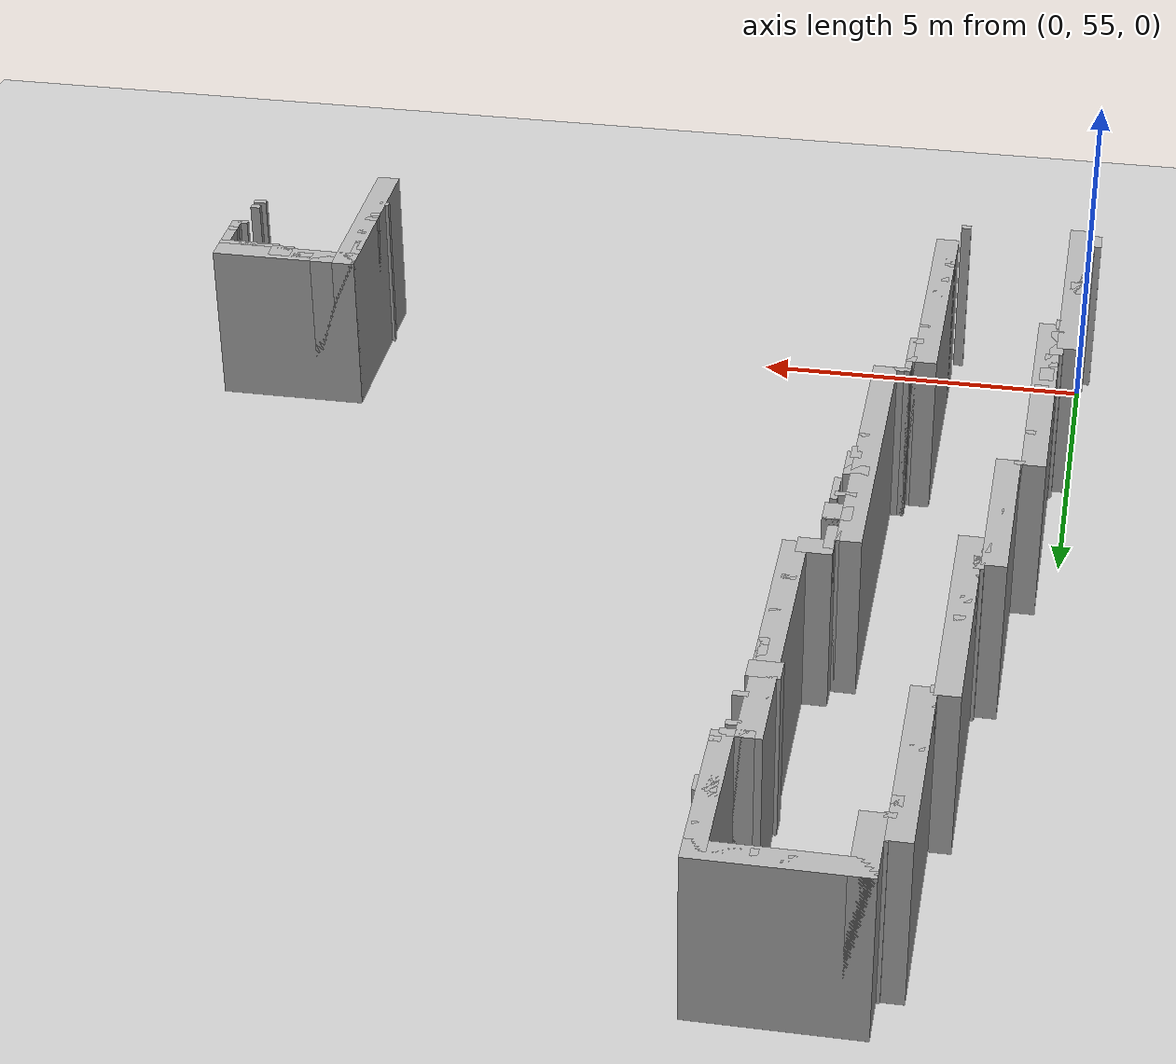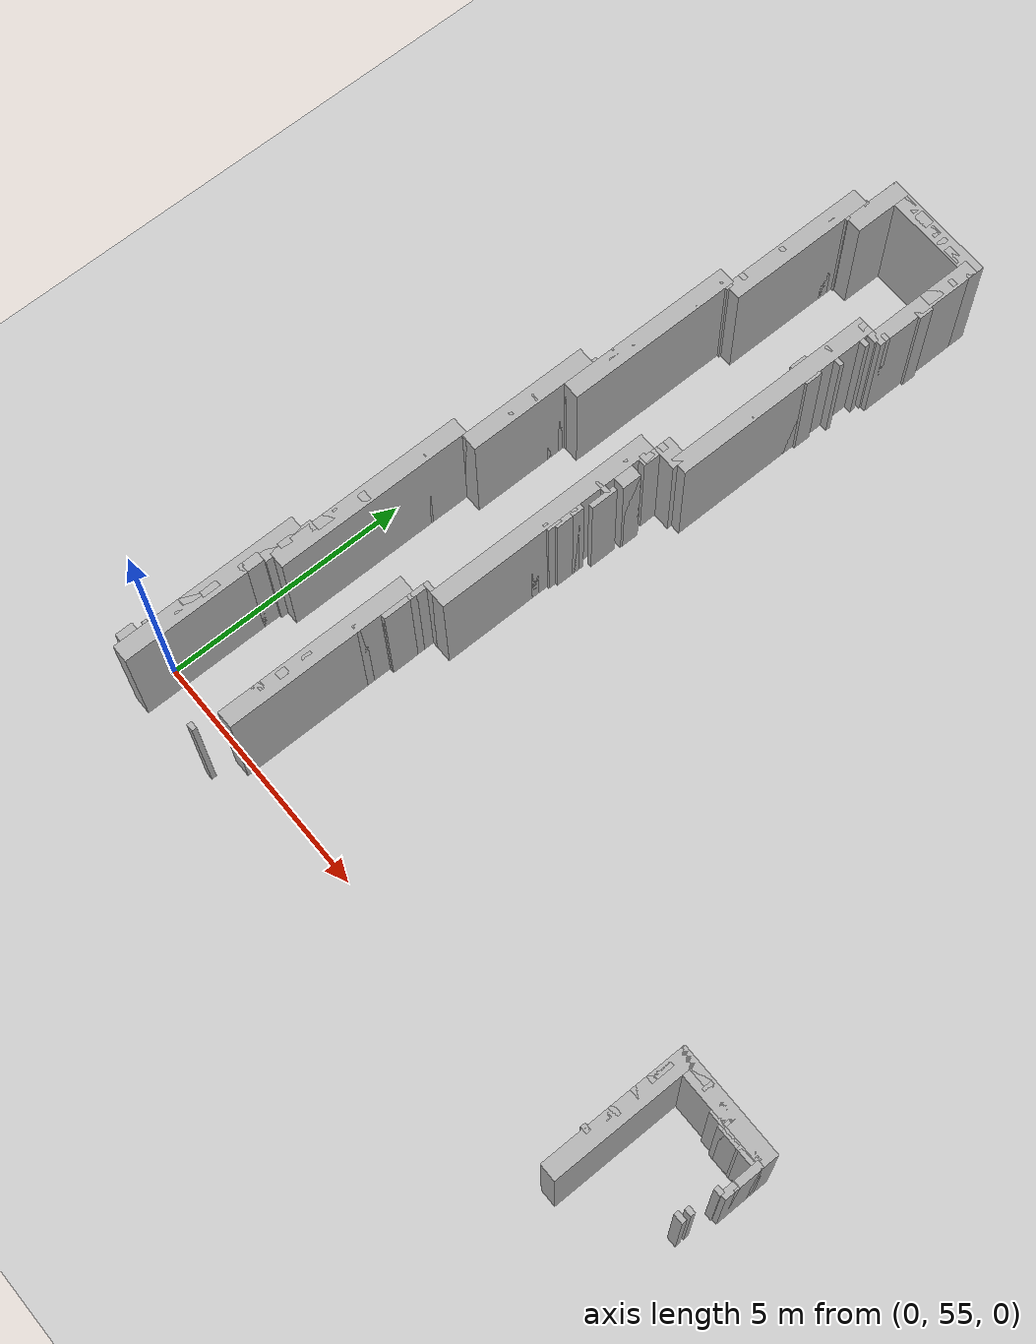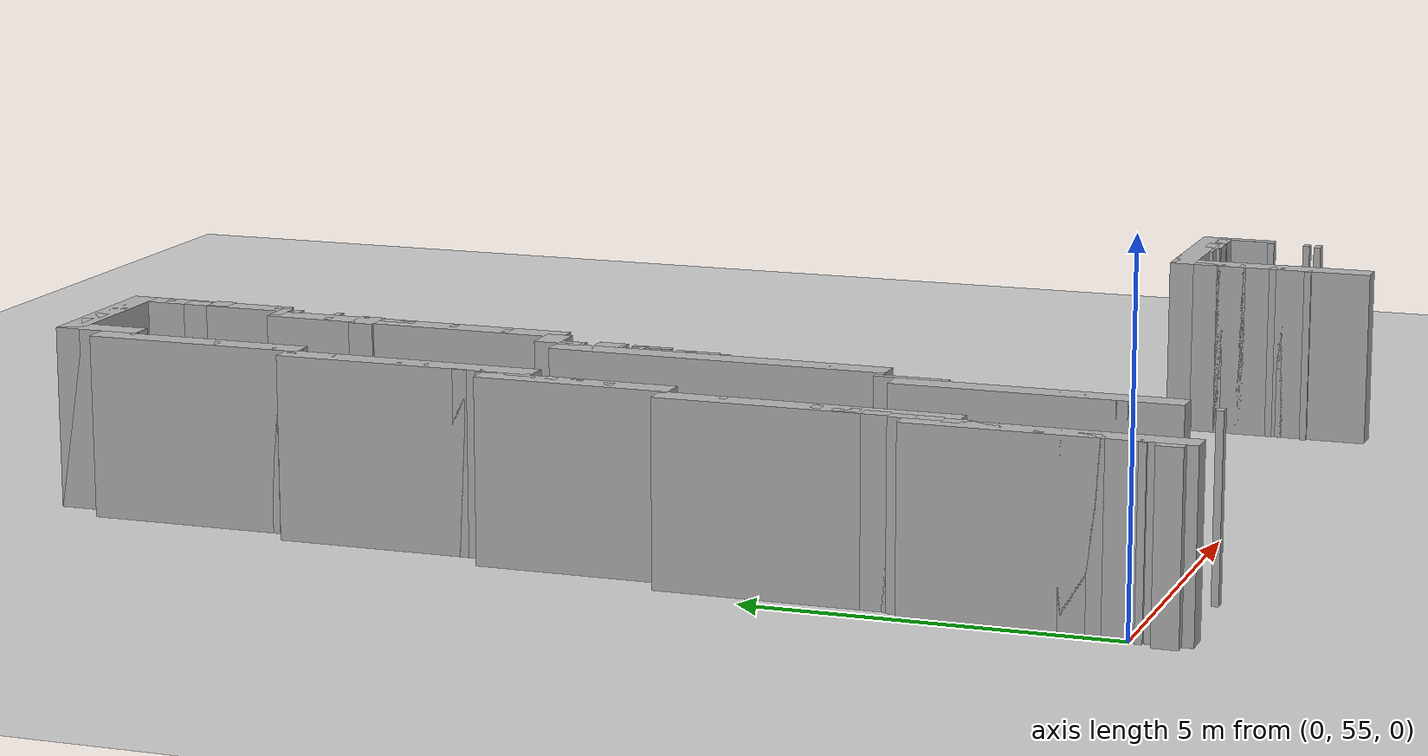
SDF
<sdf version="1.9">
 <world name="real_map_big_fix">
  <model name="ground_plane">
   <static>true</static>
   <link name="link">
    <collision name="collision">
     <geometry><plane><normal>0 0 1</normal><size>100 100</size></plane></geometry>
    </collision>
    <visual name="visual">
     <geometry><plane><normal>0 0 1</normal><size>100 100</size></plane></geometry>
     <material><ambient>0.8 0.8 0.8 1</ambient><diffuse>0.8 0.8 0.8 1</diffuse></material>
    </visual>
   </link>
  </model>
  <model name="wall_h_000">
   <static>true</static>
   <pose>2.7770 70.1620 1.2500 0 0 0</pose>
   <link name="link">
    <collision name="collision"><geometry><box><size>2.3000 0.3500 2.5000</size></box></geometry></collision>
    <visual name="visual">
     <geometry><box><size>2.3000 0.3500 2.5000</size></box></geometry>
     <material><ambient>0.7 0.7 0.7 1</ambient><diffuse>0.7 0.7 0.7 1</diffuse></material>
    </visual>
   </link>
  </model>
  <model name="wall_h_001">
   <static>true</static>
   <pose>3.8020 69.7120 1.2500 0 0 0</pose>
   <link name="link">
    <collision name="collision"><geometry><box><size>0.1500 0.1000 2.5000</size></box></geometry></collision>
    <visual name="visual">
     <geometry><box><size>0.1500 0.1000 2.5000</size></box></geometry>
     <material><ambient>0.7 0.7 0.7 1</ambient><diffuse>0.7 0.7 0.7 1</diffuse></material>
    </visual>
   </link>
  </model>
  <model name="wall_h_002">
   <static>true</static>
   <pose>1.6520 69.6120 1.2500 0 0 0</pose>
   <link name="link">
    <collision name="collision"><geometry><box><size>0.1500 0.1000 2.5000</size></box></geometry></collision>
    <visual name="visual">
     <geometry><box><size>0.1500 0.1000 2.5000</size></box></geometry>
     <material><ambient>0.7 0.7 0.7 1</ambient><diffuse>0.7 0.7 0.7 1</diffuse></material>
    </visual>
   </link>
  </model>
  <model name="wall_h_003">
   <static>true</static>
   <pose>3.7520 69.2620 1.2500 0 0 0</pose>
   <link name="link">
    <collision name="collision"><geometry><box><size>0.2500 0.3500 2.5000</size></box></geometry></collision>
    <visual name="visual">
     <geometry><box><size>0.2500 0.3500 2.5000</size></box></geometry>
     <material><ambient>0.7 0.7 0.7 1</ambient><diffuse>0.7 0.7 0.7 1</diffuse></material>
    </visual>
   </link>
  </model>
  <model name="wall_h_004">
   <static>true</static>
   <pose>1.6020 69.1620 1.2500 0 0 0</pose>
   <link name="link">
    <collision name="collision"><geometry><box><size>0.1500 0.1000 2.5000</size></box></geometry></collision>
    <visual name="visual">
     <geometry><box><size>0.1500 0.1000 2.5000</size></box></geometry>
     <material><ambient>0.7 0.7 0.7 1</ambient><diffuse>0.7 0.7 0.7 1</diffuse></material>
    </visual>
   </link>
  </model>
  <model name="wall_h_005">
   <static>true</static>
   <pose>3.8270 68.9370 1.2500 0 0 0</pose>
   <link name="link">
    <collision name="collision"><geometry><box><size>0.3000 0.3000 2.5000</size></box></geometry></collision>
    <visual name="visual">
     <geometry><box><size>0.3000 0.3000 2.5000</size></box></geometry>
     <material><ambient>0.7 0.7 0.7 1</ambient><diffuse>0.7 0.7 0.7 1</diffuse></material>
    </visual>
   </link>
  </model>
  <model name="wall_h_006">
   <static>true</static>
   <pose>1.5520 68.8870 1.2500 0 0 0</pose>
   <link name="link">
    <collision name="collision"><geometry><box><size>0.1500 0.2000 2.5000</size></box></geometry></collision>
    <visual name="visual">
     <geometry><box><size>0.1500 0.2000 2.5000</size></box></geometry>
     <material><ambient>0.7 0.7 0.7 1</ambient><diffuse>0.7 0.7 0.7 1</diffuse></material>
    </visual>
   </link>
  </model>
  <model name="wall_h_007">
   <static>true</static>
   <pose>3.8520 68.0620 1.2500 0 0 0</pose>
   <link name="link">
    <collision name="collision"><geometry><box><size>0.1500 0.1000 2.5000</size></box></geometry></collision>
    <visual name="visual">
     <geometry><box><size>0.1500 0.1000 2.5000</size></box></geometry>
     <material><ambient>0.7 0.7 0.7 1</ambient><diffuse>0.7 0.7 0.7 1</diffuse></material>
    </visual>
   </link>
  </model>
  <model name="wall_h_008">
   <static>true</static>
   <pose>3.6020 67.9120 1.2500 0 0 0</pose>
   <link name="link">
    <collision name="collision"><geometry><box><size>0.4500 0.1500 2.5000</size></box></geometry></collision>
    <visual name="visual">
     <geometry><box><size>0.4500 0.1500 2.5000</size></box></geometry>
     <material><ambient>0.7 0.7 0.7 1</ambient><diffuse>0.7 0.7 0.7 1</diffuse></material>
    </visual>
   </link>
  </model>
  <model name="wall_h_009">
   <static>true</static>
   <pose>1.4270 67.8370 1.2500 0 0 0</pose>
   <link name="link">
    <collision name="collision"><geometry><box><size>0.2000 0.1000 2.5000</size></box></geometry></collision>
    <visual name="visual">
     <geometry><box><size>0.2000 0.1000 2.5000</size></box></geometry>
     <material><ambient>0.7 0.7 0.7 1</ambient><diffuse>0.7 0.7 0.7 1</diffuse></material>
    </visual>
   </link>
  </model>
  <model name="wall_h_010">
   <static>true</static>
   <pose>3.6770 67.7120 1.2500 0 0 0</pose>
   <link name="link">
    <collision name="collision"><geometry><box><size>0.2000 0.1000 2.5000</size></box></geometry></collision>
    <visual name="visual">
     <geometry><box><size>0.2000 0.1000 2.5000</size></box></geometry>
     <material><ambient>0.7 0.7 0.7 1</ambient><diffuse>0.7 0.7 0.7 1</diffuse></material>
    </visual>
   </link>
  </model>
  <model name="wall_h_011">
   <static>true</static>
   <pose>3.4020 67.1120 1.2500 0 0 0</pose>
   <link name="link">
    <collision name="collision"><geometry><box><size>0.1500 0.1000 2.5000</size></box></geometry></collision>
    <visual name="visual">
     <geometry><box><size>0.1500 0.1000 2.5000</size></box></geometry>
     <material><ambient>0.7 0.7 0.7 1</ambient><diffuse>0.7 0.7 0.7 1</diffuse></material>
    </visual>
   </link>
  </model>
  <model name="wall_h_012">
   <static>true</static>
   <pose>3.6770 67.1120 1.2500 0 0 0</pose>
   <link name="link">
    <collision name="collision"><geometry><box><size>0.2000 0.1000 2.5000</size></box></geometry></collision>
    <visual name="visual">
     <geometry><box><size>0.2000 0.1000 2.5000</size></box></geometry>
     <material><ambient>0.7 0.7 0.7 1</ambient><diffuse>0.7 0.7 0.7 1</diffuse></material>
    </visual>
   </link>
  </model>
  <model name="wall_h_013">
   <static>true</static>
   <pose>1.3520 66.9370 1.2500 0 0 0</pose>
   <link name="link">
    <collision name="collision"><geometry><box><size>0.1500 0.1000 2.5000</size></box></geometry></collision>
    <visual name="visual">
     <geometry><box><size>0.1500 0.1000 2.5000</size></box></geometry>
     <material><ambient>0.7 0.7 0.7 1</ambient><diffuse>0.7 0.7 0.7 1</diffuse></material>
    </visual>
   </link>
  </model>
  <model name="wall_h_014">
   <static>true</static>
   <pose>3.4520 66.5620 1.2500 0 0 0</pose>
   <link name="link">
    <collision name="collision"><geometry><box><size>0.4500 0.3500 2.5000</size></box></geometry></collision>
    <visual name="visual">
     <geometry><box><size>0.4500 0.3500 2.5000</size></box></geometry>
     <material><ambient>0.7 0.7 0.7 1</ambient><diffuse>0.7 0.7 0.7 1</diffuse></material>
    </visual>
   </link>
  </model>
  <model name="wall_h_015">
   <static>true</static>
   <pose>1.2770 66.6120 1.2500 0 0 0</pose>
   <link name="link">
    <collision name="collision"><geometry><box><size>0.2000 0.1500 2.5000</size></box></geometry></collision>
    <visual name="visual">
     <geometry><box><size>0.2000 0.1500 2.5000</size></box></geometry>
     <material><ambient>0.7 0.7 0.7 1</ambient><diffuse>0.7 0.7 0.7 1</diffuse></material>
    </visual>
   </link>
  </model>
  <model name="wall_h_016">
   <static>true</static>
   <pose>3.5520 66.2120 1.2500 0 0 0</pose>
   <link name="link">
    <collision name="collision"><geometry><box><size>0.1500 0.3500 2.5000</size></box></geometry></collision>
    <visual name="visual">
     <geometry><box><size>0.1500 0.3500 2.5000</size></box></geometry>
     <material><ambient>0.7 0.7 0.7 1</ambient><diffuse>0.7 0.7 0.7 1</diffuse></material>
    </visual>
   </link>
  </model>
  <model name="wall_h_017">
   <static>true</static>
   <pose>3.5520 65.9620 1.2500 0 0 0</pose>
   <link name="link">
    <collision name="collision"><geometry><box><size>0.1500 0.1500 2.5000</size></box></geometry></collision>
    <visual name="visual">
     <geometry><box><size>0.1500 0.1500 2.5000</size></box></geometry>
     <material><ambient>0.7 0.7 0.7 1</ambient><diffuse>0.7 0.7 0.7 1</diffuse></material>
    </visual>
   </link>
  </model>
  <model name="wall_h_018">
   <static>true</static>
   <pose>1.2020 65.9620 1.2500 0 0 0</pose>
   <link name="link">
    <collision name="collision"><geometry><box><size>0.1500 0.1000 2.5000</size></box></geometry></collision>
    <visual name="visual">
     <geometry><box><size>0.1500 0.1000 2.5000</size></box></geometry>
     <material><ambient>0.7 0.7 0.7 1</ambient><diffuse>0.7 0.7 0.7 1</diffuse></material>
    </visual>
   </link>
  </model>
  <model name="wall_h_019">
   <static>true</static>
   <pose>1.2020 65.6370 1.2500 0 0 0</pose>
   <link name="link">
    <collision name="collision"><geometry><box><size>0.1500 0.1000 2.5000</size></box></geometry></collision>
    <visual name="visual">
     <geometry><box><size>0.1500 0.1000 2.5000</size></box></geometry>
     <material><ambient>0.7 0.7 0.7 1</ambient><diffuse>0.7 0.7 0.7 1</diffuse></material>
    </visual>
   </link>
  </model>
  <model name="wall_h_020">
   <static>true</static>
   <pose>3.5020 65.2870 1.2500 0 0 0</pose>
   <link name="link">
    <collision name="collision"><geometry><box><size>0.1500 0.1000 2.5000</size></box></geometry></collision>
    <visual name="visual">
     <geometry><box><size>0.1500 0.1000 2.5000</size></box></geometry>
     <material><ambient>0.7 0.7 0.7 1</ambient><diffuse>0.7 0.7 0.7 1</diffuse></material>
    </visual>
   </link>
  </model>
  <model name="wall_h_021">
   <static>true</static>
   <pose>1.1520 65.0620 1.2500 0 0 0</pose>
   <link name="link">
    <collision name="collision"><geometry><box><size>0.1500 0.1500 2.5000</size></box></geometry></collision>
    <visual name="visual">
     <geometry><box><size>0.1500 0.1500 2.5000</size></box></geometry>
     <material><ambient>0.7 0.7 0.7 1</ambient><diffuse>0.7 0.7 0.7 1</diffuse></material>
    </visual>
   </link>
  </model>
  <model name="wall_h_022">
   <static>true</static>
   <pose>1.1020 64.6120 1.2500 0 0 0</pose>
   <link name="link">
    <collision name="collision"><geometry><box><size>0.1500 0.1500 2.5000</size></box></geometry></collision>
    <visual name="visual">
     <geometry><box><size>0.1500 0.1500 2.5000</size></box></geometry>
     <material><ambient>0.7 0.7 0.7 1</ambient><diffuse>0.7 0.7 0.7 1</diffuse></material>
    </visual>
   </link>
  </model>
  <model name="wall_h_023">
   <static>true</static>
   <pose>3.4270 64.4870 1.2500 0 0 0</pose>
   <link name="link">
    <collision name="collision"><geometry><box><size>0.2000 0.1000 2.5000</size></box></geometry></collision>
    <visual name="visual">
     <geometry><box><size>0.2000 0.1000 2.5000</size></box></geometry>
     <material><ambient>0.7 0.7 0.7 1</ambient><diffuse>0.7 0.7 0.7 1</diffuse></material>
    </visual>
   </link>
  </model>
  <model name="wall_h_024">
   <static>true</static>
   <pose>1.0520 64.1370 1.2500 0 0 0</pose>
   <link name="link">
    <collision name="collision"><geometry><box><size>0.1500 0.2000 2.5000</size></box></geometry></collision>
    <visual name="visual">
     <geometry><box><size>0.1500 0.2000 2.5000</size></box></geometry>
     <material><ambient>0.7 0.7 0.7 1</ambient><diffuse>0.7 0.7 0.7 1</diffuse></material>
    </visual>
   </link>
  </model>
  <model name="wall_h_025">
   <static>true</static>
   <pose>1.0020 63.7370 1.2500 0 0 0</pose>
   <link name="link">
    <collision name="collision"><geometry><box><size>0.1500 0.3000 2.5000</size></box></geometry></collision>
    <visual name="visual">
     <geometry><box><size>0.1500 0.3000 2.5000</size></box></geometry>
     <material><ambient>0.7 0.7 0.7 1</ambient><diffuse>0.7 0.7 0.7 1</diffuse></material>
    </visual>
   </link>
  </model>
  <model name="wall_h_026">
   <static>true</static>
   <pose>3.1770 63.7120 1.2500 0 0 0</pose>
   <link name="link">
    <collision name="collision"><geometry><box><size>0.5000 0.3500 2.5000</size></box></geometry></collision>
    <visual name="visual">
     <geometry><box><size>0.5000 0.3500 2.5000</size></box></geometry>
     <material><ambient>0.7 0.7 0.7 1</ambient><diffuse>0.7 0.7 0.7 1</diffuse></material>
    </visual>
   </link>
  </model>
  <model name="wall_h_027">
   <static>true</static>
   <pose>2.9770 63.3870 1.2500 0 0 0</pose>
   <link name="link">
    <collision name="collision"><geometry><box><size>0.2000 0.3000 2.5000</size></box></geometry></collision>
    <visual name="visual">
     <geometry><box><size>0.2000 0.3000 2.5000</size></box></geometry>
     <material><ambient>0.7 0.7 0.7 1</ambient><diffuse>0.7 0.7 0.7 1</diffuse></material>
    </visual>
   </link>
  </model>
  <model name="wall_h_028">
   <static>true</static>
   <pose>0.9520 63.3120 1.2500 0 0 0</pose>
   <link name="link">
    <collision name="collision"><geometry><box><size>0.1500 0.3500 2.5000</size></box></geometry></collision>
    <visual name="visual">
     <geometry><box><size>0.1500 0.3500 2.5000</size></box></geometry>
     <material><ambient>0.7 0.7 0.7 1</ambient><diffuse>0.7 0.7 0.7 1</diffuse></material>
    </visual>
   </link>
  </model>
  <model name="wall_h_029">
   <static>true</static>
   <pose>0.9020 63.0370 1.2500 0 0 0</pose>
   <link name="link">
    <collision name="collision"><geometry><box><size>0.1500 0.1000 2.5000</size></box></geometry></collision>
    <visual name="visual">
     <geometry><box><size>0.1500 0.1000 2.5000</size></box></geometry>
     <material><ambient>0.7 0.7 0.7 1</ambient><diffuse>0.7 0.7 0.7 1</diffuse></material>
    </visual>
   </link>
  </model>
  <model name="wall_h_030">
   <static>true</static>
   <pose>2.9770 62.8620 1.2500 0 0 0</pose>
   <link name="link">
    <collision name="collision"><geometry><box><size>0.4000 0.3500 2.5000</size></box></geometry></collision>
    <visual name="visual">
     <geometry><box><size>0.4000 0.3500 2.5000</size></box></geometry>
     <material><ambient>0.7 0.7 0.7 1</ambient><diffuse>0.7 0.7 0.7 1</diffuse></material>
    </visual>
   </link>
  </model>
  <model name="wall_h_031">
   <static>true</static>
   <pose>0.9020 62.8120 1.2500 0 0 0</pose>
   <link name="link">
    <collision name="collision"><geometry><box><size>0.1500 0.1500 2.5000</size></box></geometry></collision>
    <visual name="visual">
     <geometry><box><size>0.1500 0.1500 2.5000</size></box></geometry>
     <material><ambient>0.7 0.7 0.7 1</ambient><diffuse>0.7 0.7 0.7 1</diffuse></material>
    </visual>
   </link>
  </model>
  <model name="wall_h_032">
   <static>true</static>
   <pose>0.8520 62.4870 1.2500 0 0 0</pose>
   <link name="link">
    <collision name="collision"><geometry><box><size>0.1500 0.2000 2.5000</size></box></geometry></collision>
    <visual name="visual">
     <geometry><box><size>0.1500 0.2000 2.5000</size></box></geometry>
     <material><ambient>0.7 0.7 0.7 1</ambient><diffuse>0.7 0.7 0.7 1</diffuse></material>
    </visual>
   </link>
  </model>
  <model name="wall_h_033">
   <static>true</static>
   <pose>2.9270 62.3870 1.2500 0 0 0</pose>
   <link name="link">
    <collision name="collision"><geometry><box><size>0.3000 0.1000 2.5000</size></box></geometry></collision>
    <visual name="visual">
     <geometry><box><size>0.3000 0.1000 2.5000</size></box></geometry>
     <material><ambient>0.7 0.7 0.7 1</ambient><diffuse>0.7 0.7 0.7 1</diffuse></material>
    </visual>
   </link>
  </model>
  <model name="wall_h_034">
   <static>true</static>
   <pose>0.8020 62.0120 1.2500 0 0 0</pose>
   <link name="link">
    <collision name="collision"><geometry><box><size>0.1500 0.1500 2.5000</size></box></geometry></collision>
    <visual name="visual">
     <geometry><box><size>0.1500 0.1500 2.5000</size></box></geometry>
     <material><ambient>0.7 0.7 0.7 1</ambient><diffuse>0.7 0.7 0.7 1</diffuse></material>
    </visual>
   </link>
  </model>
  <model name="wall_h_035">
   <static>true</static>
   <pose>2.8520 61.7620 1.2500 0 0 0</pose>
   <link name="link">
    <collision name="collision"><geometry><box><size>0.3500 0.2500 2.5000</size></box></geometry></collision>
    <visual name="visual">
     <geometry><box><size>0.3500 0.2500 2.5000</size></box></geometry>
     <material><ambient>0.7 0.7 0.7 1</ambient><diffuse>0.7 0.7 0.7 1</diffuse></material>
    </visual>
   </link>
  </model>
  <model name="wall_h_036">
   <static>true</static>
   <pose>2.9020 61.2870 1.2500 0 0 0</pose>
   <link name="link">
    <collision name="collision"><geometry><box><size>0.1500 0.3000 2.5000</size></box></geometry></collision>
    <visual name="visual">
     <geometry><box><size>0.1500 0.3000 2.5000</size></box></geometry>
     <material><ambient>0.7 0.7 0.7 1</ambient><diffuse>0.7 0.7 0.7 1</diffuse></material>
    </visual>
   </link>
  </model>
  <model name="wall_h_037">
   <static>true</static>
   <pose>0.6520 61.1870 1.2500 0 0 0</pose>
   <link name="link">
    <collision name="collision"><geometry><box><size>0.1500 0.1000 2.5000</size></box></geometry></collision>
    <visual name="visual">
     <geometry><box><size>0.1500 0.1000 2.5000</size></box></geometry>
     <material><ambient>0.7 0.7 0.7 1</ambient><diffuse>0.7 0.7 0.7 1</diffuse></material>
    </visual>
   </link>
  </model>
  <model name="wall_h_038">
   <static>true</static>
   <pose>2.8520 60.8620 1.2500 0 0 0</pose>
   <link name="link">
    <collision name="collision"><geometry><box><size>0.1500 0.1500 2.5000</size></box></geometry></collision>
    <visual name="visual">
     <geometry><box><size>0.1500 0.1500 2.5000</size></box></geometry>
     <material><ambient>0.7 0.7 0.7 1</ambient><diffuse>0.7 0.7 0.7 1</diffuse></material>
    </visual>
   </link>
  </model>
  <model name="wall_h_039">
   <static>true</static>
   <pose>0.5520 60.3620 1.2500 0 0 0</pose>
   <link name="link">
    <collision name="collision"><geometry><box><size>0.1500 0.1000 2.5000</size></box></geometry></collision>
    <visual name="visual">
     <geometry><box><size>0.1500 0.1000 2.5000</size></box></geometry>
     <material><ambient>0.7 0.7 0.7 1</ambient><diffuse>0.7 0.7 0.7 1</diffuse></material>
    </visual>
   </link>
  </model>
  <model name="wall_h_040">
   <static>true</static>
   <pose>2.7020 59.6620 1.2500 0 0 0</pose>
   <link name="link">
    <collision name="collision"><geometry><box><size>0.1500 0.1000 2.5000</size></box></geometry></collision>
    <visual name="visual">
     <geometry><box><size>0.1500 0.1000 2.5000</size></box></geometry>
     <material><ambient>0.7 0.7 0.7 1</ambient><diffuse>0.7 0.7 0.7 1</diffuse></material>
    </visual>
   </link>
  </model>
  <model name="wall_h_041">
   <static>true</static>
   <pose>0.4770 59.1120 1.2500 0 0 0</pose>
   <link name="link">
    <collision name="collision"><geometry><box><size>0.2000 0.1500 2.5000</size></box></geometry></collision>
    <visual name="visual">
     <geometry><box><size>0.2000 0.1500 2.5000</size></box></geometry>
     <material><ambient>0.7 0.7 0.7 1</ambient><diffuse>0.7 0.7 0.7 1</diffuse></material>
    </visual>
   </link>
  </model>
  <model name="wall_h_042">
   <static>true</static>
   <pose>2.5270 58.9370 1.2500 0 0 0</pose>
   <link name="link">
    <collision name="collision"><geometry><box><size>0.3000 0.1000 2.5000</size></box></geometry></collision>
    <visual name="visual">
     <geometry><box><size>0.3000 0.1000 2.5000</size></box></geometry>
     <material><ambient>0.7 0.7 0.7 1</ambient><diffuse>0.7 0.7 0.7 1</diffuse></material>
    </visual>
   </link>
  </model>
  <model name="wall_h_043">
   <static>true</static>
   <pose>0.4270 58.7120 1.2500 0 0 0</pose>
   <link name="link">
    <collision name="collision"><geometry><box><size>0.2000 0.3500 2.5000</size></box></geometry></collision>
    <visual name="visual">
     <geometry><box><size>0.2000 0.3500 2.5000</size></box></geometry>
     <material><ambient>0.7 0.7 0.7 1</ambient><diffuse>0.7 0.7 0.7 1</diffuse></material>
    </visual>
   </link>
  </model>
  <model name="wall_h_044">
   <static>true</static>
   <pose>2.4020 58.6120 1.2500 0 0 0</pose>
   <link name="link">
    <collision name="collision"><geometry><box><size>0.1500 0.1500 2.5000</size></box></geometry></collision>
    <visual name="visual">
     <geometry><box><size>0.1500 0.1500 2.5000</size></box></geometry>
     <material><ambient>0.7 0.7 0.7 1</ambient><diffuse>0.7 0.7 0.7 1</diffuse></material>
    </visual>
   </link>
  </model>
  <model name="wall_h_045">
   <static>true</static>
   <pose>0.3770 58.3120 1.2500 0 0 0</pose>
   <link name="link">
    <collision name="collision"><geometry><box><size>0.2000 0.3500 2.5000</size></box></geometry></collision>
    <visual name="visual">
     <geometry><box><size>0.2000 0.3500 2.5000</size></box></geometry>
     <material><ambient>0.7 0.7 0.7 1</ambient><diffuse>0.7 0.7 0.7 1</diffuse></material>
    </visual>
   </link>
  </model>
  <model name="wall_h_046">
   <static>true</static>
   <pose>0.3270 57.9620 1.2500 0 0 0</pose>
   <link name="link">
    <collision name="collision"><geometry><box><size>0.2000 0.3500 2.5000</size></box></geometry></collision>
    <visual name="visual">
     <geometry><box><size>0.2000 0.3500 2.5000</size></box></geometry>
     <material><ambient>0.7 0.7 0.7 1</ambient><diffuse>0.7 0.7 0.7 1</diffuse></material>
    </visual>
   </link>
  </model>
  <model name="wall_h_047">
   <static>true</static>
   <pose>2.3520 58.0620 1.2500 0 0 0</pose>
   <link name="link">
    <collision name="collision"><geometry><box><size>0.1500 0.1500 2.5000</size></box></geometry></collision>
    <visual name="visual">
     <geometry><box><size>0.1500 0.1500 2.5000</size></box></geometry>
     <material><ambient>0.7 0.7 0.7 1</ambient><diffuse>0.7 0.7 0.7 1</diffuse></material>
    </visual>
   </link>
  </model>
  <model name="wall_h_048">
   <static>true</static>
   <pose>0.3270 57.6120 1.2500 0 0 0</pose>
   <link name="link">
    <collision name="collision"><geometry><box><size>0.2000 0.3500 2.5000</size></box></geometry></collision>
    <visual name="visual">
     <geometry><box><size>0.2000 0.3500 2.5000</size></box></geometry>
     <material><ambient>0.7 0.7 0.7 1</ambient><diffuse>0.7 0.7 0.7 1</diffuse></material>
    </visual>
   </link>
  </model>
  <model name="wall_h_049">
   <static>true</static>
   <pose>2.3020 57.5620 1.2500 0 0 0</pose>
   <link name="link">
    <collision name="collision"><geometry><box><size>0.1500 0.1500 2.5000</size></box></geometry></collision>
    <visual name="visual">
     <geometry><box><size>0.1500 0.1500 2.5000</size></box></geometry>
     <material><ambient>0.7 0.7 0.7 1</ambient><diffuse>0.7 0.7 0.7 1</diffuse></material>
    </visual>
   </link>
  </model>
  <model name="wall_h_050">
   <static>true</static>
   <pose>0.2770 57.2620 1.2500 0 0 0</pose>
   <link name="link">
    <collision name="collision"><geometry><box><size>0.2000 0.3500 2.5000</size></box></geometry></collision>
    <visual name="visual">
     <geometry><box><size>0.2000 0.3500 2.5000</size></box></geometry>
     <material><ambient>0.7 0.7 0.7 1</ambient><diffuse>0.7 0.7 0.7 1</diffuse></material>
    </visual>
   </link>
  </model>
  <model name="wall_h_051">
   <static>true</static>
   <pose>12.3020 57.0120 1.2500 0 0 0</pose>
   <link name="link">
    <collision name="collision"><geometry><box><size>2.2500 0.3500 2.5000</size></box></geometry></collision>
    <visual name="visual">
     <geometry><box><size>2.2500 0.3500 2.5000</size></box></geometry>
     <material><ambient>0.7 0.7 0.7 1</ambient><diffuse>0.7 0.7 0.7 1</diffuse></material>
    </visual>
   </link>
  </model>
  <model name="wall_h_052">
   <static>true</static>
   <pose>0.2270 56.9120 1.2500 0 0 0</pose>
   <link name="link">
    <collision name="collision"><geometry><box><size>0.2000 0.3500 2.5000</size></box></geometry></collision>
    <visual name="visual">
     <geometry><box><size>0.2000 0.3500 2.5000</size></box></geometry>
     <material><ambient>0.7 0.7 0.7 1</ambient><diffuse>0.7 0.7 0.7 1</diffuse></material>
    </visual>
   </link>
  </model>
  <model name="wall_h_053">
   <static>true</static>
   <pose>2.2520 57.0620 1.2500 0 0 0</pose>
   <link name="link">
    <collision name="collision"><geometry><box><size>0.1500 0.1000 2.5000</size></box></geometry></collision>
    <visual name="visual">
     <geometry><box><size>0.1500 0.1000 2.5000</size></box></geometry>
     <material><ambient>0.7 0.7 0.7 1</ambient><diffuse>0.7 0.7 0.7 1</diffuse></material>
    </visual>
   </link>
  </model>
  <model name="wall_h_054">
   <static>true</static>
   <pose>11.2520 56.6620 1.2500 0 0 0</pose>
   <link name="link">
    <collision name="collision"><geometry><box><size>0.1500 0.3500 2.5000</size></box></geometry></collision>
    <visual name="visual">
     <geometry><box><size>0.1500 0.3500 2.5000</size></box></geometry>
     <material><ambient>0.7 0.7 0.7 1</ambient><diffuse>0.7 0.7 0.7 1</diffuse></material>
    </visual>
   </link>
  </model>
  <model name="wall_h_055">
   <static>true</static>
   <pose>12.9520 56.7870 1.2500 0 0 0</pose>
   <link name="link">
    <collision name="collision"><geometry><box><size>0.9500 0.1000 2.5000</size></box></geometry></collision>
    <visual name="visual">
     <geometry><box><size>0.9500 0.1000 2.5000</size></box></geometry>
     <material><ambient>0.7 0.7 0.7 1</ambient><diffuse>0.7 0.7 0.7 1</diffuse></material>
    </visual>
   </link>
  </model>
  <model name="wall_h_056">
   <static>true</static>
   <pose>0.2020 56.7120 1.2500 0 0 0</pose>
   <link name="link">
    <collision name="collision"><geometry><box><size>0.1500 0.1000 2.5000</size></box></geometry></collision>
    <visual name="visual">
     <geometry><box><size>0.1500 0.1000 2.5000</size></box></geometry>
     <material><ambient>0.7 0.7 0.7 1</ambient><diffuse>0.7 0.7 0.7 1</diffuse></material>
    </visual>
   </link>
  </model>
  <model name="wall_h_057">
   <static>true</static>
   <pose>2.2020 56.5870 1.2500 0 0 0</pose>
   <link name="link">
    <collision name="collision"><geometry><box><size>0.1500 0.2000 2.5000</size></box></geometry></collision>
    <visual name="visual">
     <geometry><box><size>0.1500 0.2000 2.5000</size></box></geometry>
     <material><ambient>0.7 0.7 0.7 1</ambient><diffuse>0.7 0.7 0.7 1</diffuse></material>
    </visual>
   </link>
  </model>
  <model name="wall_h_058">
   <static>true</static>
   <pose>11.2520 56.4370 1.2500 0 0 0</pose>
   <link name="link">
    <collision name="collision"><geometry><box><size>0.1500 0.1000 2.5000</size></box></geometry></collision>
    <visual name="visual">
     <geometry><box><size>0.1500 0.1000 2.5000</size></box></geometry>
     <material><ambient>0.7 0.7 0.7 1</ambient><diffuse>0.7 0.7 0.7 1</diffuse></material>
    </visual>
   </link>
  </model>
  <model name="wall_h_059">
   <static>true</static>
   <pose>13.3520 56.3370 1.2500 0 0 0</pose>
   <link name="link">
    <collision name="collision"><geometry><box><size>0.1500 0.1000 2.5000</size></box></geometry></collision>
    <visual name="visual">
     <geometry><box><size>0.1500 0.1000 2.5000</size></box></geometry>
     <material><ambient>0.7 0.7 0.7 1</ambient><diffuse>0.7 0.7 0.7 1</diffuse></material>
    </visual>
   </link>
  </model>
  <model name="wall_h_060">
   <static>true</static>
   <pose>0.1270 56.0620 1.2500 0 0 0</pose>
   <link name="link">
    <collision name="collision"><geometry><box><size>0.2000 0.3500 2.5000</size></box></geometry></collision>
    <visual name="visual">
     <geometry><box><size>0.2000 0.3500 2.5000</size></box></geometry>
     <material><ambient>0.7 0.7 0.7 1</ambient><diffuse>0.7 0.7 0.7 1</diffuse></material>
    </visual>
   </link>
  </model>
  <model name="wall_h_061">
   <static>true</static>
   <pose>2.1520 56.0870 1.2500 0 0 0</pose>
   <link name="link">
    <collision name="collision"><geometry><box><size>0.1500 0.2000 2.5000</size></box></geometry></collision>
    <visual name="visual">
     <geometry><box><size>0.1500 0.2000 2.5000</size></box></geometry>
     <material><ambient>0.7 0.7 0.7 1</ambient><diffuse>0.7 0.7 0.7 1</diffuse></material>
    </visual>
   </link>
  </model>
  <model name="wall_h_062">
   <static>true</static>
   <pose>11.2770 56.1120 1.2500 0 0 0</pose>
   <link name="link">
    <collision name="collision"><geometry><box><size>0.2000 0.1000 2.5000</size></box></geometry></collision>
    <visual name="visual">
     <geometry><box><size>0.2000 0.1000 2.5000</size></box></geometry>
     <material><ambient>0.7 0.7 0.7 1</ambient><diffuse>0.7 0.7 0.7 1</diffuse></material>
    </visual>
   </link>
  </model>
  <model name="wall_h_063">
   <static>true</static>
   <pose>13.2520 56.1120 1.2500 0 0 0</pose>
   <link name="link">
    <collision name="collision"><geometry><box><size>0.1500 0.1000 2.5000</size></box></geometry></collision>
    <visual name="visual">
     <geometry><box><size>0.1500 0.1000 2.5000</size></box></geometry>
     <material><ambient>0.7 0.7 0.7 1</ambient><diffuse>0.7 0.7 0.7 1</diffuse></material>
    </visual>
   </link>
  </model>
  <model name="wall_h_064">
   <static>true</static>
   <pose>0.0770 55.7120 1.2500 0 0 0</pose>
   <link name="link">
    <collision name="collision"><geometry><box><size>0.2000 0.3500 2.5000</size></box></geometry></collision>
    <visual name="visual">
     <geometry><box><size>0.2000 0.3500 2.5000</size></box></geometry>
     <material><ambient>0.7 0.7 0.7 1</ambient><diffuse>0.7 0.7 0.7 1</diffuse></material>
    </visual>
   </link>
  </model>
  <model name="wall_h_065">
   <static>true</static>
   <pose>2.1020 55.6620 1.2500 0 0 0</pose>
   <link name="link">
    <collision name="collision"><geometry><box><size>0.1500 0.1000 2.5000</size></box></geometry></collision>
    <visual name="visual">
     <geometry><box><size>0.1500 0.1000 2.5000</size></box></geometry>
     <material><ambient>0.7 0.7 0.7 1</ambient><diffuse>0.7 0.7 0.7 1</diffuse></material>
    </visual>
   </link>
  </model>
  <model name="wall_h_066">
   <static>true</static>
   <pose>11.2770 55.6620 1.2500 0 0 0</pose>
   <link name="link">
    <collision name="collision"><geometry><box><size>0.2000 0.1000 2.5000</size></box></geometry></collision>
    <visual name="visual">
     <geometry><box><size>0.2000 0.1000 2.5000</size></box></geometry>
     <material><ambient>0.7 0.7 0.7 1</ambient><diffuse>0.7 0.7 0.7 1</diffuse></material>
    </visual>
   </link>
  </model>
  <model name="wall_h_067">
   <static>true</static>
   <pose>13.2020 55.5620 1.2500 0 0 0</pose>
   <link name="link">
    <collision name="collision"><geometry><box><size>0.1500 0.1000 2.5000</size></box></geometry></collision>
    <visual name="visual">
     <geometry><box><size>0.1500 0.1000 2.5000</size></box></geometry>
     <material><ambient>0.7 0.7 0.7 1</ambient><diffuse>0.7 0.7 0.7 1</diffuse></material>
    </visual>
   </link>
  </model>
  <model name="wall_h_068">
   <static>true</static>
   <pose>0.0770 55.4370 1.2500 0 0 0</pose>
   <link name="link">
    <collision name="collision"><geometry><box><size>0.2000 0.2000 2.5000</size></box></geometry></collision>
    <visual name="visual">
     <geometry><box><size>0.2000 0.2000 2.5000</size></box></geometry>
     <material><ambient>0.7 0.7 0.7 1</ambient><diffuse>0.7 0.7 0.7 1</diffuse></material>
    </visual>
   </link>
  </model>
  <model name="wall_h_069">
   <static>true</static>
   <pose>2.1020 55.5120 1.2500 0 0 0</pose>
   <link name="link">
    <collision name="collision"><geometry><box><size>0.1500 0.1000 2.5000</size></box></geometry></collision>
    <visual name="visual">
     <geometry><box><size>0.1500 0.1000 2.5000</size></box></geometry>
     <material><ambient>0.7 0.7 0.7 1</ambient><diffuse>0.7 0.7 0.7 1</diffuse></material>
    </visual>
   </link>
  </model>
  <model name="wall_h_070">
   <static>true</static>
   <pose>11.2520 55.5120 1.2500 0 0 0</pose>
   <link name="link">
    <collision name="collision"><geometry><box><size>0.1500 0.1000 2.5000</size></box></geometry></collision>
    <visual name="visual">
     <geometry><box><size>0.1500 0.1000 2.5000</size></box></geometry>
     <material><ambient>0.7 0.7 0.7 1</ambient><diffuse>0.7 0.7 0.7 1</diffuse></material>
    </visual>
   </link>
  </model>
  <model name="wall_h_071">
   <static>true</static>
   <pose>13.1770 55.3870 1.2500 0 0 0</pose>
   <link name="link">
    <collision name="collision"><geometry><box><size>0.2000 0.1000 2.5000</size></box></geometry></collision>
    <visual name="visual">
     <geometry><box><size>0.2000 0.1000 2.5000</size></box></geometry>
     <material><ambient>0.7 0.7 0.7 1</ambient><diffuse>0.7 0.7 0.7 1</diffuse></material>
    </visual>
   </link>
  </model>
  <model name="wall_h_072">
   <static>true</static>
   <pose>11.2020 55.1370 1.2500 0 0 0</pose>
   <link name="link">
    <collision name="collision"><geometry><box><size>0.1500 0.1000 2.5000</size></box></geometry></collision>
    <visual name="visual">
     <geometry><box><size>0.1500 0.1000 2.5000</size></box></geometry>
     <material><ambient>0.7 0.7 0.7 1</ambient><diffuse>0.7 0.7 0.7 1</diffuse></material>
    </visual>
   </link>
  </model>
  <model name="wall_h_073">
   <static>true</static>
   <pose>0.0020 54.8620 1.2500 0 0 0</pose>
   <link name="link">
    <collision name="collision"><geometry><box><size>0.1500 0.1000 2.5000</size></box></geometry></collision>
    <visual name="visual">
     <geometry><box><size>0.1500 0.1000 2.5000</size></box></geometry>
     <material><ambient>0.7 0.7 0.7 1</ambient><diffuse>0.7 0.7 0.7 1</diffuse></material>
    </visual>
   </link>
  </model>
  <model name="wall_h_074">
   <static>true</static>
   <pose>-0.0730 54.5120 1.2500 0 0 0</pose>
   <link name="link">
    <collision name="collision"><geometry><box><size>0.2000 0.3500 2.5000</size></box></geometry></collision>
    <visual name="visual">
     <geometry><box><size>0.2000 0.3500 2.5000</size></box></geometry>
     <material><ambient>0.7 0.7 0.7 1</ambient><diffuse>0.7 0.7 0.7 1</diffuse></material>
    </visual>
   </link>
  </model>
  <model name="wall_h_075">
   <static>true</static>
   <pose>1.9520 54.3620 1.2500 0 0 0</pose>
   <link name="link">
    <collision name="collision"><geometry><box><size>0.1500 0.1000 2.5000</size></box></geometry></collision>
    <visual name="visual">
     <geometry><box><size>0.1500 0.1000 2.5000</size></box></geometry>
     <material><ambient>0.7 0.7 0.7 1</ambient><diffuse>0.7 0.7 0.7 1</diffuse></material>
    </visual>
   </link>
  </model>
  <model name="wall_v_051">
   <static>true</static>
   <pose>0.1520 56.0620 1.2500 0 0 0</pose>
   <link name="link">
    <collision name="collision"><geometry><box><size>0.3500 3.7500 2.5000</size></box></geometry></collision>
    <visual name="visual">
     <geometry><box><size>0.3500 3.7500 2.5000</size></box></geometry>
     <material><ambient>0.7 0.7 0.7 1</ambient><diffuse>0.7 0.7 0.7 1</diffuse></material>
    </visual>
   </link>
  </model>
  <model name="wall_v_055">
   <static>true</static>
   <pose>0.4520 59.2370 1.2500 0 0 0</pose>
   <link name="link">
    <collision name="collision"><geometry><box><size>0.3500 4.0000 2.5000</size></box></geometry></collision>
    <visual name="visual">
     <geometry><box><size>0.3500 4.0000 2.5000</size></box></geometry>
     <material><ambient>0.7 0.7 0.7 1</ambient><diffuse>0.7 0.7 0.7 1</diffuse></material>
    </visual>
   </link>
  </model>
  <model name="wall_v_058">
   <static>true</static>
   <pose>0.8020 62.4620 1.2500 0 0 0</pose>
   <link name="link">
    <collision name="collision"><geometry><box><size>0.3500 2.6500 2.5000</size></box></geometry></collision>
    <visual name="visual">
     <geometry><box><size>0.3500 2.6500 2.5000</size></box></geometry>
     <material><ambient>0.7 0.7 0.7 1</ambient><diffuse>0.7 0.7 0.7 1</diffuse></material>
    </visual>
   </link>
  </model>
  <model name="wall_v_064">
   <static>true</static>
   <pose>1.1520 64.9370 1.2500 0 0 0</pose>
   <link name="link">
    <collision name="collision"><geometry><box><size>0.3500 3.6000 2.5000</size></box></geometry></collision>
    <visual name="visual">
     <geometry><box><size>0.3500 3.6000 2.5000</size></box></geometry>
     <material><ambient>0.7 0.7 0.7 1</ambient><diffuse>0.7 0.7 0.7 1</diffuse></material>
    </visual>
   </link>
  </model>
  <model name="wall_v_069">
   <static>true</static>
   <pose>1.4520 68.1120 1.2500 0 0 0</pose>
   <link name="link">
    <collision name="collision"><geometry><box><size>0.3500 3.0500 2.5000</size></box></geometry></collision>
    <visual name="visual">
     <geometry><box><size>0.3500 3.0500 2.5000</size></box></geometry>
     <material><ambient>0.7 0.7 0.7 1</ambient><diffuse>0.7 0.7 0.7 1</diffuse></material>
    </visual>
   </link>
  </model>
  <model name="wall_v_075">
   <static>true</static>
   <pose>1.8020 69.7370 1.2500 0 0 0</pose>
   <link name="link">
    <collision name="collision"><geometry><box><size>0.3500 1.2000 2.5000</size></box></geometry></collision>
    <visual name="visual">
     <geometry><box><size>0.3500 1.2000 2.5000</size></box></geometry>
     <material><ambient>0.7 0.7 0.7 1</ambient><diffuse>0.7 0.7 0.7 1</diffuse></material>
    </visual>
   </link>
  </model>
  <model name="wall_v_084">
   <static>true</static>
   <pose>2.1520 70.2120 1.2500 0 0 0</pose>
   <link name="link">
    <collision name="collision"><geometry><box><size>0.3500 0.1500 2.5000</size></box></geometry></collision>
    <visual name="visual">
     <geometry><box><size>0.3500 0.1500 2.5000</size></box></geometry>
     <material><ambient>0.7 0.7 0.7 1</ambient><diffuse>0.7 0.7 0.7 1</diffuse></material>
    </visual>
   </link>
  </model>
  <model name="wall_v_085">
   <static>true</static>
   <pose>2.2020 56.7620 1.2500 0 0 0</pose>
   <link name="link">
    <collision name="collision"><geometry><box><size>0.3500 3.8500 2.5000</size></box></geometry></collision>
    <visual name="visual">
     <geometry><box><size>0.3500 3.8500 2.5000</size></box></geometry>
     <material><ambient>0.7 0.7 0.7 1</ambient><diffuse>0.7 0.7 0.7 1</diffuse></material>
    </visual>
   </link>
  </model>
  <model name="wall_v_091">
   <static>true</static>
   <pose>2.5270 70.1870 1.2500 0 0 0</pose>
   <link name="link">
    <collision name="collision"><geometry><box><size>0.3000 0.2000 2.5000</size></box></geometry></collision>
    <visual name="visual">
     <geometry><box><size>0.3000 0.2000 2.5000</size></box></geometry>
     <material><ambient>0.7 0.7 0.7 1</ambient><diffuse>0.7 0.7 0.7 1</diffuse></material>
    </visual>
   </link>
  </model>
  <model name="wall_v_092">
   <static>true</static>
   <pose>2.4270 58.4870 1.2500 0 0 0</pose>
   <link name="link">
    <collision name="collision"><geometry><box><size>0.1000 1.0000 2.5000</size></box></geometry></collision>
    <visual name="visual">
     <geometry><box><size>0.1000 1.0000 2.5000</size></box></geometry>
     <material><ambient>0.7 0.7 0.7 1</ambient><diffuse>0.7 0.7 0.7 1</diffuse></material>
    </visual>
   </link>
  </model>
  <model name="wall_v_095">
   <static>true</static>
   <pose>2.7520 61.2120 1.2500 0 0 0</pose>
   <link name="link">
    <collision name="collision"><geometry><box><size>0.3500 4.6500 2.5000</size></box></geometry></collision>
    <visual name="visual">
     <geometry><box><size>0.3500 4.6500 2.5000</size></box></geometry>
     <material><ambient>0.7 0.7 0.7 1</ambient><diffuse>0.7 0.7 0.7 1</diffuse></material>
    </visual>
   </link>
  </model>
  <model name="wall_v_101">
   <static>true</static>
   <pose>2.8270 70.1620 1.2500 0 0 0</pose>
   <link name="link">
    <collision name="collision"><geometry><box><size>0.2000 0.1500 2.5000</size></box></geometry></collision>
    <visual name="visual">
     <geometry><box><size>0.2000 0.1500 2.5000</size></box></geometry>
     <material><ambient>0.7 0.7 0.7 1</ambient><diffuse>0.7 0.7 0.7 1</diffuse></material>
    </visual>
   </link>
  </model>
  <model name="wall_v_103">
   <static>true</static>
   <pose>3.0020 63.4620 1.2500 0 0 0</pose>
   <link name="link">
    <collision name="collision"><geometry><box><size>0.1500 0.5500 2.5000</size></box></geometry></collision>
    <visual name="visual">
     <geometry><box><size>0.1500 0.5500 2.5000</size></box></geometry>
     <material><ambient>0.7 0.7 0.7 1</ambient><diffuse>0.7 0.7 0.7 1</diffuse></material>
    </visual>
   </link>
  </model>
  <model name="wall_v_104">
   <static>true</static>
   <pose>3.0520 62.8370 1.2500 0 0 0</pose>
   <link name="link">
    <collision name="collision"><geometry><box><size>0.2500 0.4000 2.5000</size></box></geometry></collision>
    <visual name="visual">
     <geometry><box><size>0.2500 0.4000 2.5000</size></box></geometry>
     <material><ambient>0.7 0.7 0.7 1</ambient><diffuse>0.7 0.7 0.7 1</diffuse></material>
    </visual>
   </link>
  </model>
  <model name="wall_v_105">
   <static>true</static>
   <pose>2.9770 61.5370 1.2500 0 0 0</pose>
   <link name="link">
    <collision name="collision"><geometry><box><size>0.1000 0.5000 2.5000</size></box></geometry></collision>
    <visual name="visual">
     <geometry><box><size>0.1000 0.5000 2.5000</size></box></geometry>
     <material><ambient>0.7 0.7 0.7 1</ambient><diffuse>0.7 0.7 0.7 1</diffuse></material>
    </visual>
   </link>
  </model>
  <model name="wall_v_108">
   <static>true</static>
   <pose>3.0770 70.1370 1.2500 0 0 0</pose>
   <link name="link">
    <collision name="collision"><geometry><box><size>0.1000 0.2000 2.5000</size></box></geometry></collision>
    <visual name="visual">
     <geometry><box><size>0.1000 0.2000 2.5000</size></box></geometry>
     <material><ambient>0.7 0.7 0.7 1</ambient><diffuse>0.7 0.7 0.7 1</diffuse></material>
    </visual>
   </link>
  </model>
  <model name="wall_v_109">
   <static>true</static>
   <pose>3.0770 62.2620 1.2500 0 0 0</pose>
   <link name="link">
    <collision name="collision"><geometry><box><size>0.1000 0.5500 2.5000</size></box></geometry></collision>
    <visual name="visual">
     <geometry><box><size>0.1000 0.5500 2.5000</size></box></geometry>
     <material><ambient>0.7 0.7 0.7 1</ambient><diffuse>0.7 0.7 0.7 1</diffuse></material>
    </visual>
   </link>
  </model>
  <model name="wall_v_113">
   <static>true</static>
   <pose>3.4020 70.1120 1.2500 0 0 0</pose>
   <link name="link">
    <collision name="collision"><geometry><box><size>0.3500 0.1500 2.5000</size></box></geometry></collision>
    <visual name="visual">
     <geometry><box><size>0.3500 0.1500 2.5000</size></box></geometry>
     <material><ambient>0.7 0.7 0.7 1</ambient><diffuse>0.7 0.7 0.7 1</diffuse></material>
    </visual>
   </link>
  </model>
  <model name="wall_v_115">
   <static>true</static>
   <pose>3.4520 65.8120 1.2500 0 0 0</pose>
   <link name="link">
    <collision name="collision"><geometry><box><size>0.3500 4.3500 2.5000</size></box></geometry></collision>
    <visual name="visual">
     <geometry><box><size>0.3500 4.3500 2.5000</size></box></geometry>
     <material><ambient>0.7 0.7 0.7 1</ambient><diffuse>0.7 0.7 0.7 1</diffuse></material>
    </visual>
   </link>
  </model>
  <model name="wall_v_121">
   <static>true</static>
   <pose>3.7770 69.0370 1.2500 0 0 0</pose>
   <link name="link">
    <collision name="collision"><geometry><box><size>0.3000 2.3000 2.5000</size></box></geometry></collision>
    <visual name="visual">
     <geometry><box><size>0.3000 2.3000 2.5000</size></box></geometry>
     <material><ambient>0.7 0.7 0.7 1</ambient><diffuse>0.7 0.7 0.7 1</diffuse></material>
    </visual>
   </link>
  </model>
  <model name="wall_v_225">
   <static>true</static>
   <pose>11.3520 55.7120 1.2500 0 0 0</pose>
   <link name="link">
    <collision name="collision"><geometry><box><size>0.3500 2.9500 2.5000</size></box></geometry></collision>
    <visual name="visual">
     <geometry><box><size>0.3500 2.9500 2.5000</size></box></geometry>
     <material><ambient>0.7 0.7 0.7 1</ambient><diffuse>0.7 0.7 0.7 1</diffuse></material>
    </visual>
   </link>
  </model>
  <model name="wall_v_227">
   <static>true</static>
   <pose>11.7020 57.0870 1.2500 0 0 0</pose>
   <link name="link">
    <collision name="collision"><geometry><box><size>0.3500 0.2000 2.5000</size></box></geometry></collision>
    <visual name="visual">
     <geometry><box><size>0.3500 0.2000 2.5000</size></box></geometry>
     <material><ambient>0.7 0.7 0.7 1</ambient><diffuse>0.7 0.7 0.7 1</diffuse></material>
    </visual>
   </link>
  </model>
  <model name="wall_v_229">
   <static>true</static>
   <pose>12.0520 57.0370 1.2500 0 0 0</pose>
   <link name="link">
    <collision name="collision"><geometry><box><size>0.3500 0.2000 2.5000</size></box></geometry></collision>
    <visual name="visual">
     <geometry><box><size>0.3500 0.2000 2.5000</size></box></geometry>
     <material><ambient>0.7 0.7 0.7 1</ambient><diffuse>0.7 0.7 0.7 1</diffuse></material>
    </visual>
   </link>
  </model>
  <model name="wall_v_231">
   <static>true</static>
   <pose>12.4020 56.9370 1.2500 0 0 0</pose>
   <link name="link">
    <collision name="collision"><geometry><box><size>0.3500 0.3000 2.5000</size></box></geometry></collision>
    <visual name="visual">
     <geometry><box><size>0.3500 0.3000 2.5000</size></box></geometry>
     <material><ambient>0.7 0.7 0.7 1</ambient><diffuse>0.7 0.7 0.7 1</diffuse></material>
    </visual>
   </link>
  </model>
  <model name="wall_v_233">
   <static>true</static>
   <pose>12.7520 56.8620 1.2500 0 0 0</pose>
   <link name="link">
    <collision name="collision"><geometry><box><size>0.3500 0.2500 2.5000</size></box></geometry></collision>
    <visual name="visual">
     <geometry><box><size>0.3500 0.2500 2.5000</size></box></geometry>
     <material><ambient>0.7 0.7 0.7 1</ambient><diffuse>0.7 0.7 0.7 1</diffuse></material>
    </visual>
   </link>
  </model>
  <model name="wall_v_238">
   <static>true</static>
   <pose>13.1520 56.8370 1.2500 0 0 0</pose>
   <link name="link">
    <collision name="collision"><geometry><box><size>0.3500 0.2000 2.5000</size></box></geometry></collision>
    <visual name="visual">
     <geometry><box><size>0.3500 0.2000 2.5000</size></box></geometry>
     <material><ambient>0.7 0.7 0.7 1</ambient><diffuse>0.7 0.7 0.7 1</diffuse></material>
    </visual>
   </link>
  </model>
  <model name="wall_v_239">
   <static>true</static>
   <pose>13.3520 56.4870 1.2500 0 0 0</pose>
   <link name="link">
    <collision name="collision"><geometry><box><size>0.1500 0.8000 2.5000</size></box></geometry></collision>
    <visual name="visual">
     <geometry><box><size>0.1500 0.8000 2.5000</size></box></geometry>
     <material><ambient>0.7 0.7 0.7 1</ambient><diffuse>0.7 0.7 0.7 1</diffuse></material>
    </visual>
   </link>
  </model>
 </world>
</sdf>
